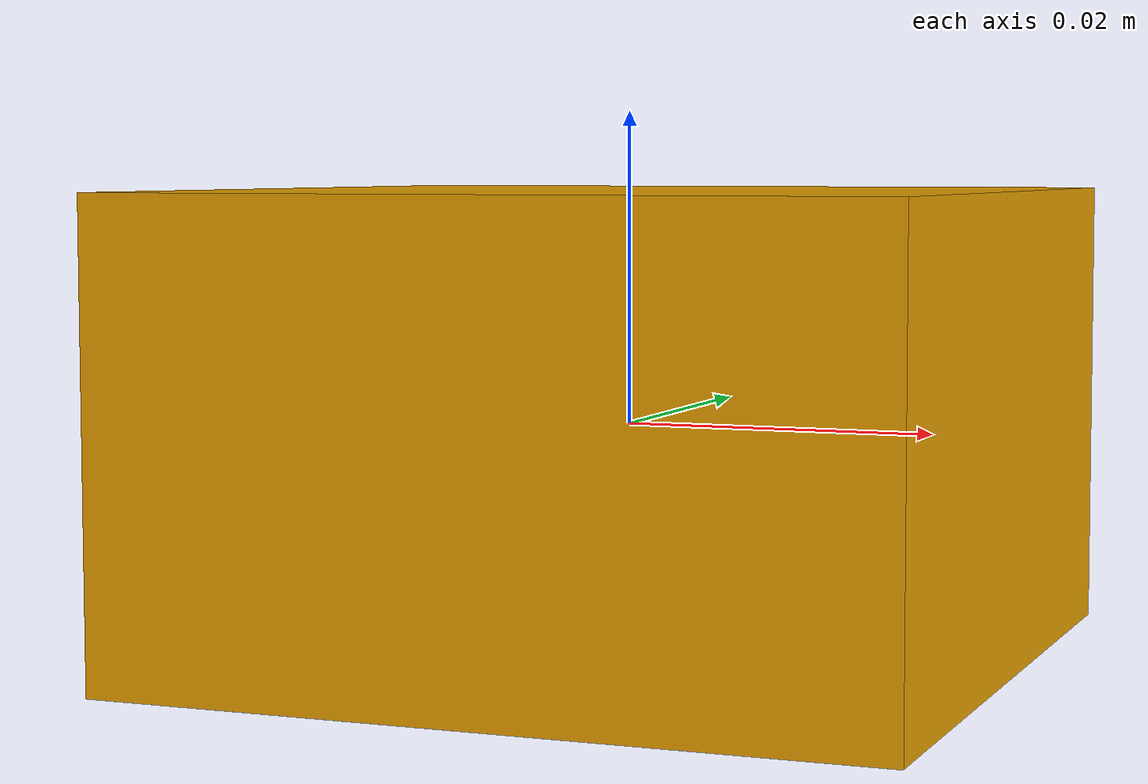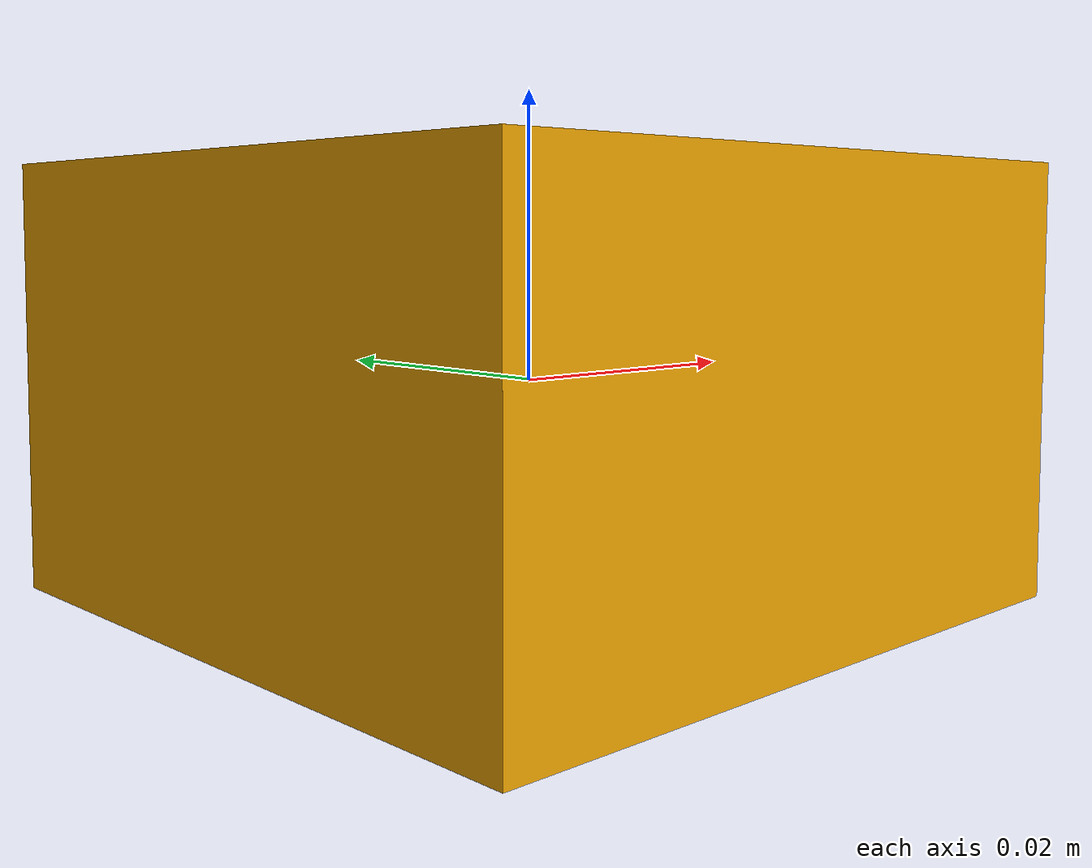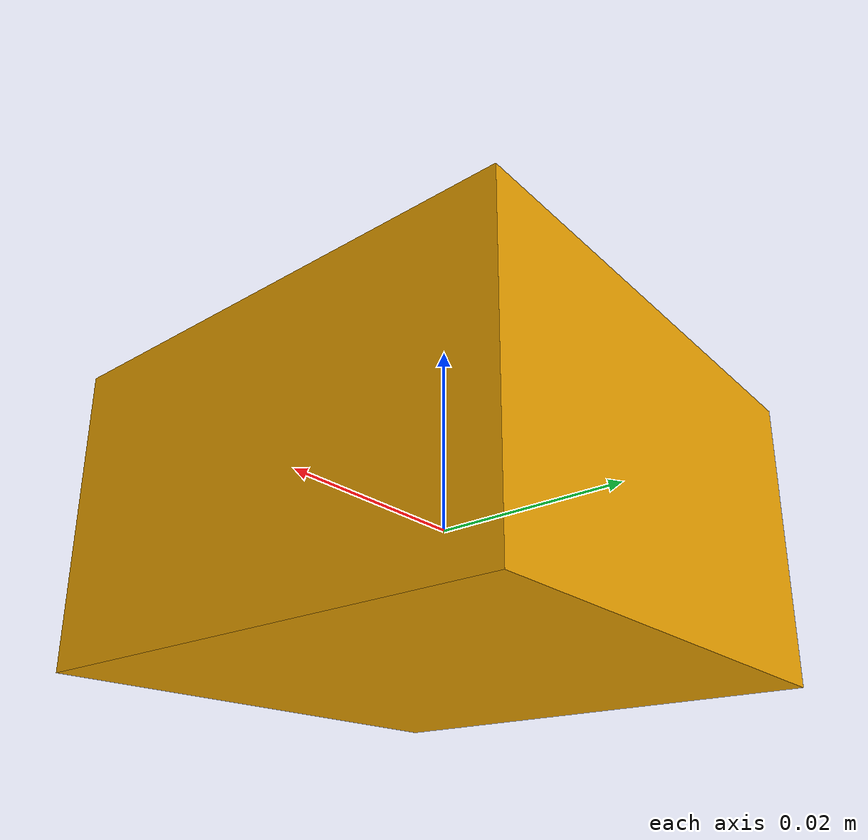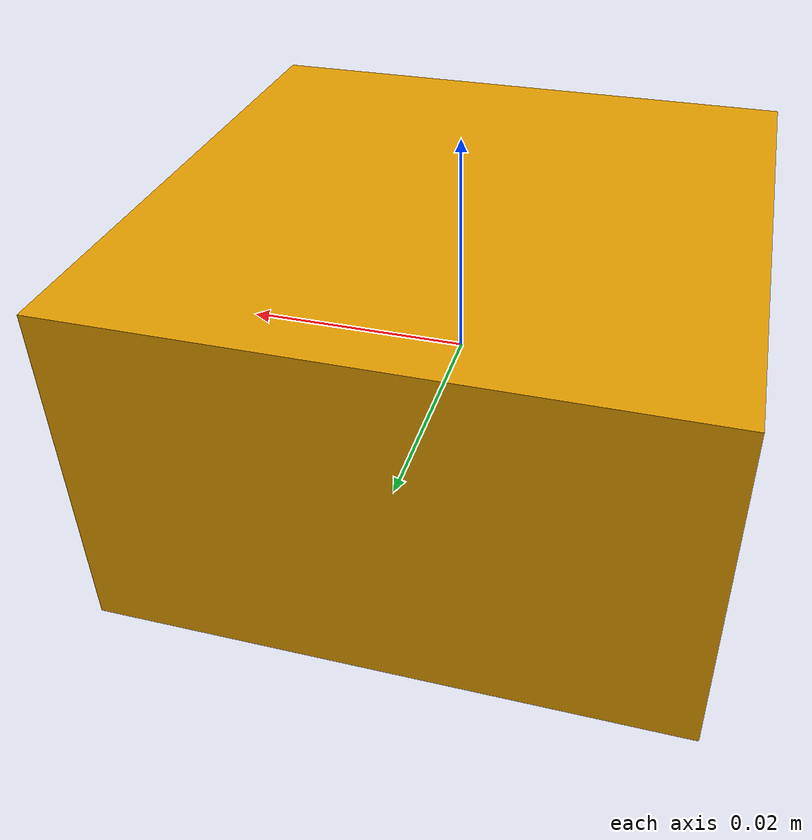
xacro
<?xml version="1.0"?>
<robot xmlns:xacro="http://www.ros.org/wiki/xacro">

  <!-- ================= CAMERA LINK ================= -->
  <link name="camera_link">
    <inertial>
      <mass value="0.1"/>
      <origin xyz="0 0 0"/>
      <inertia
        ixx="1e-4" ixy="0" ixz="0"
        iyy="1e-4" iyz="0"
        izz="1e-4"/>
    </inertial>

    <visual>
      <origin xyz="0 0 0" rpy="0 0 0"/>
      <geometry>
        <box size="0.05 0.05 0.03"/>
      </geometry>
    </visual>

    <collision>
      <geometry>
        <box size="0.05 0.05 0.03"/>
      </geometry>
    </collision>
  </link>

  <!-- ================= GAZEBO SENSOR ================= -->
  <gazebo reference="camera_link">
    <sensor name="rgbd_camera" type="rgbd_camera">
      <always_on>true</always_on>
      <update_rate>30</update_rate>
      <visualize>true</visualize>

      <camera>
        <horizontal_fov>1.047</horizontal_fov>
        <image>
          <width>640</width>
          <height>480</height>
          <format>R8G8B8</format>
        </image>

        <clip>
          <near>0.05</near>
          <far>10.0</far>
        </clip>
      </camera>

      <!-- ================= ROS 2 PLUGIN ================= -->
      <plugin name="gz_ros_camera" filename="libgz_ros_camera.so">
        <ros>
          <namespace>/depth_camera</namespace>
        </ros>

        <camera_name>camera</camera_name>
        <frame_name>camera_link</frame_name>

        <!-- RGB -->
        <image_topic>image_raw</image_topic>

        <!-- Depth -->
        <depth_image_topic>depth/image_raw</depth_image_topic>

        <!-- Camera intrinsics -->
        <camera_info_topic>camera_info</camera_info_topic>

        <!-- PointCloud -->
        <point_cloud_topic>points</point_cloud_topic>

      </plugin>
    </sensor>
  </gazebo>

</robot>
